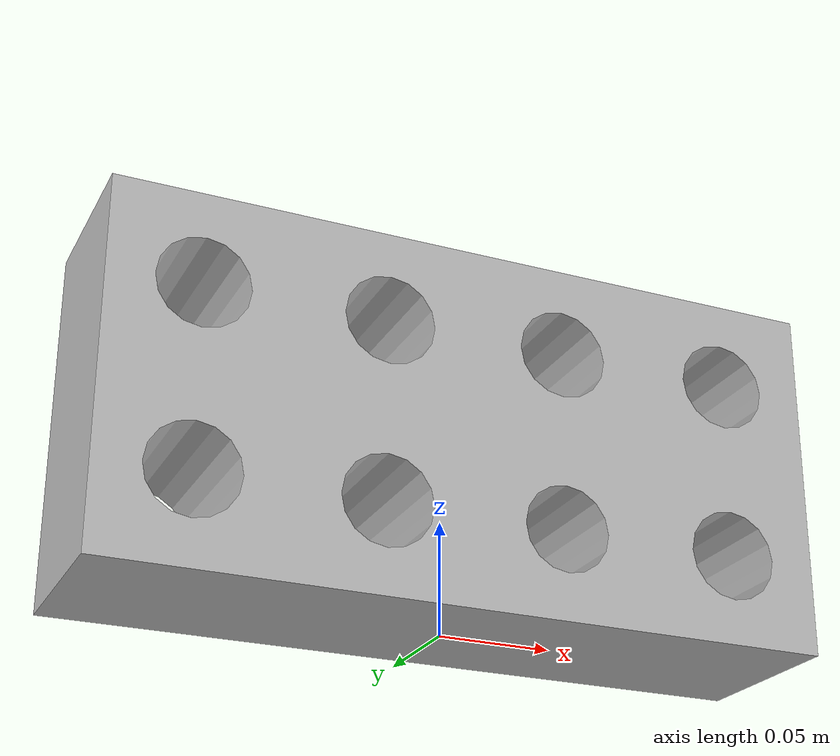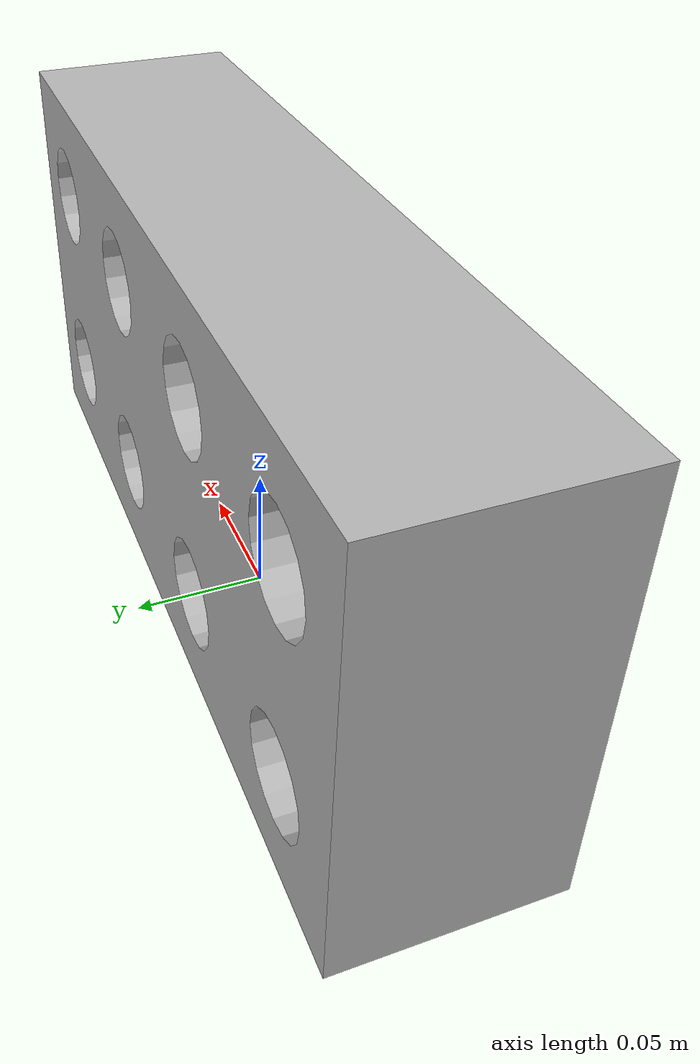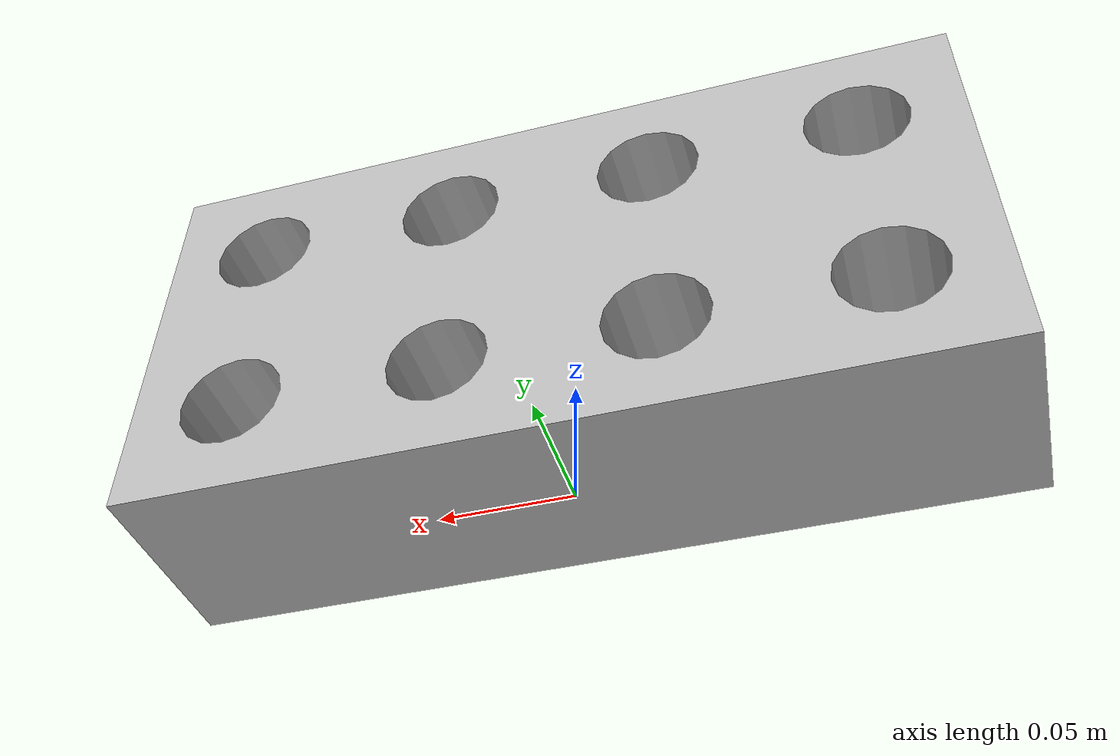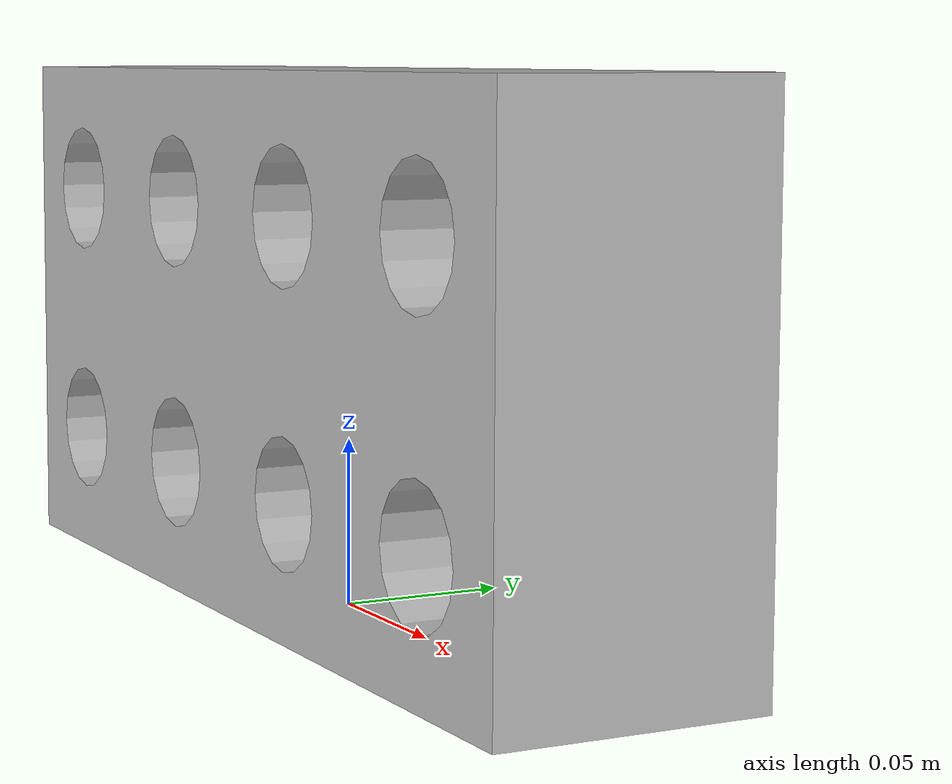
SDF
<?xml version='1.0'?>
<sdf version="1.6">
  <model name="Brick">
    <static>false</static>
    <link name="link">
      <collision name="collision">
        <geometry>
          <mesh>
            <scale>1 1 1</scale>
            <uri>model://brick/brick.stl</uri>
          </mesh>
        </geometry>
      </collision>
      <visual name="visual">
        <geometry>
          <mesh>
            <scale>1 1 1</scale>
            <uri>model://brick/brick.stl</uri>
          </mesh>
        </geometry>
      </visual>
    </link>
  </model>
</sdf>
